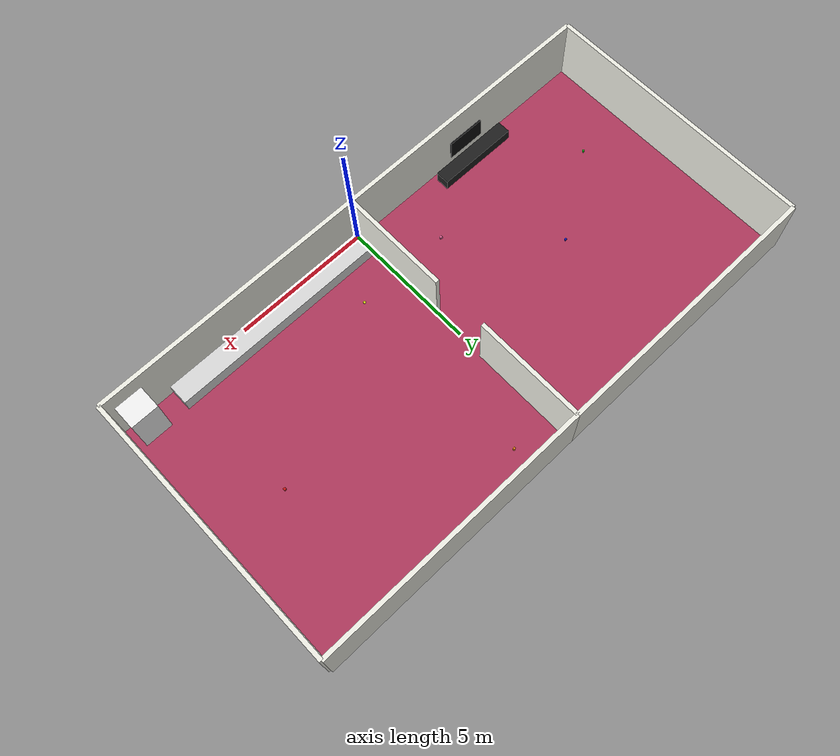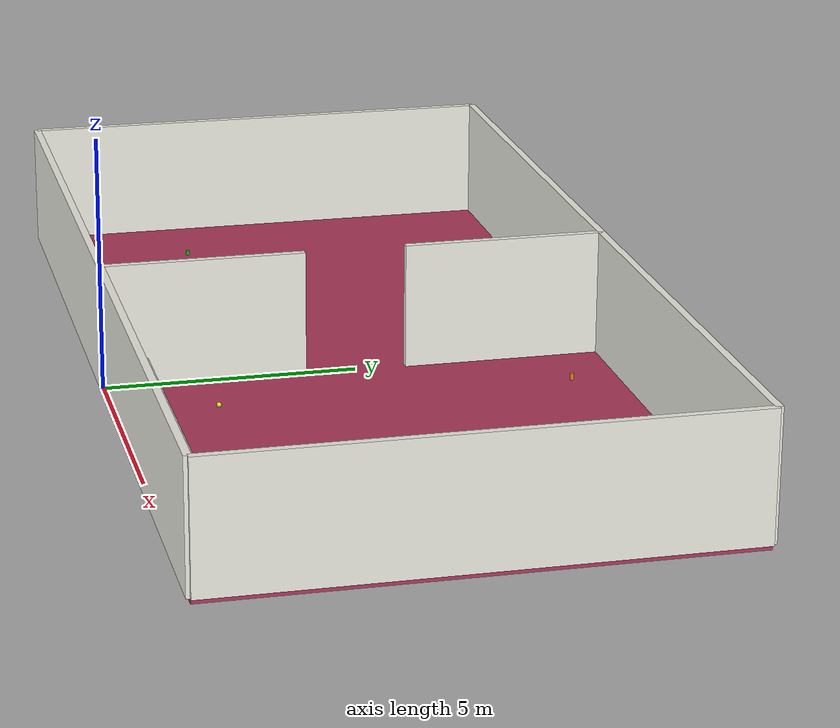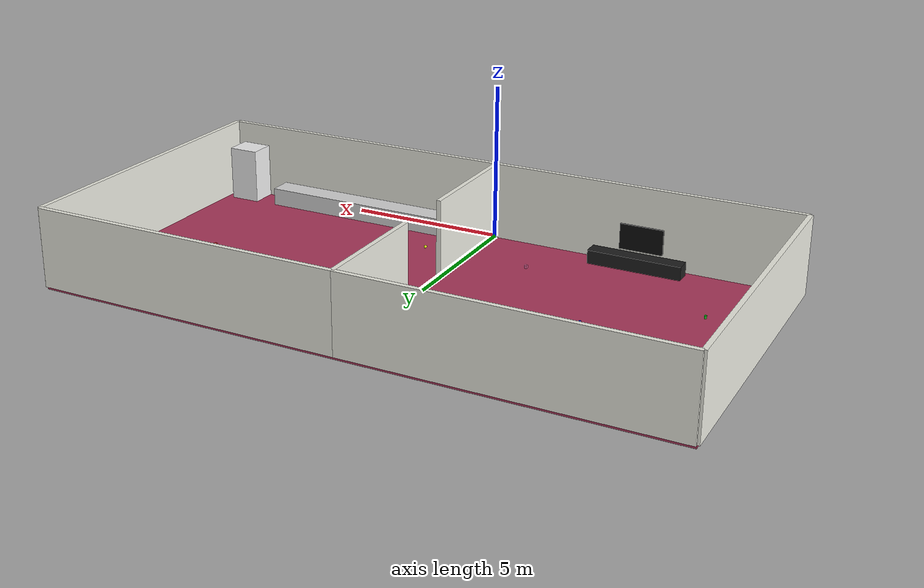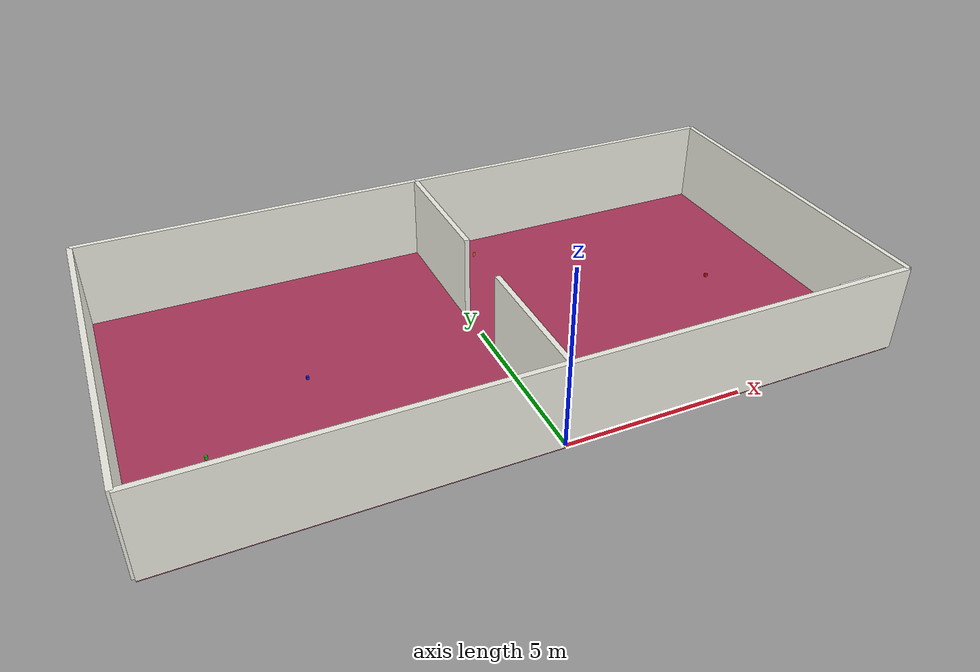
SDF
<sdf version="1.9">
 <world name="driftbot_home">
  <physics name="1ms" type="ignored">
   <max_step_size>0.001</max_step_size>
   <real_time_factor>1.0</real_time_factor>
  </physics>
  <gravity>0 0 -9.81</gravity>
  <scene><ambient>0.4 0.4 0.42</ambient><background>0.82 0.84 0.88</background><grid>false</grid></scene>
  <plugin filename="gz-sim-physics-system" name="gz::sim::systems::Physics"/>
  <plugin filename="gz-sim-sensors-system" name="gz::sim::systems::Sensors">
   <render_engine>ogre2</render_engine>
  </plugin>
  <plugin filename="gz-sim-imu-system" name="gz::sim::systems::Imu"/>
  <plugin filename="gz-sim-user-commands-system" name="gz::sim::systems::UserCommands"/>
  <plugin filename="gz-sim-scene-broadcaster-system" name="gz::sim::systems::SceneBroadcaster"/>
  <light name="sun" type="directional">
   <pose>0 0 10 0 0 0</pose>
   <diffuse>0.85 0.85 0.85 1</diffuse>
   <specular>0.2 0.2 0.2 1</specular>
   <direction>-0.5 0.1 -0.9</direction>
  </light>
  <model name="ground_plane">
   <static>true</static>
   <link name="link">
    <collision name="collision">
     <geometry><plane><normal>0 0 1</normal><size>100 100</size></plane></geometry>
     <surface><friction><ode><mu>0.8</mu><mu2>0.8</mu2></ode></friction></surface>
    </collision>
   </link>
  </model>
  <model name="house_floor">
   <static>true</static>
   <pose>0 5 -0.05 0 0 0</pose>
   <link name="link">
    <collision name="col">
     <geometry><box><size>20.0 10.0 0.1</size></box></geometry>
     <surface><friction><ode><mu>0.8</mu><mu2>0.8</mu2></ode></friction></surface>
    </collision>
    <visual name="vis">
     <geometry><box><size>20.0 10.0 0.1</size></box></geometry>
     <material>
      <ambient>0.55 0.15 0.28 1</ambient>
      <diffuse>0.68 0.22 0.36 1</diffuse>
      <specular>0.12 0.04 0.07 1</specular>
     </material>
    </visual>
   </link>
  </model>
  <model name="room1_north_wall">
   <static>true</static>
   <pose>-5 10 1.25 0 0 0</pose>
   <link name="link">
    <collision name="col"><geometry><box><size>10 0.15 2.5</size></box></geometry></collision>
    <visual name="vis">
     <geometry><box><size>10 0.15 2.5</size></box></geometry>
     <material><ambient>0.94 0.94 0.90 1</ambient><diffuse>0.94 0.94 0.90 1</diffuse></material>
    </visual>
   </link>
  </model>
  <model name="room1_west_wall">
   <static>true</static>
   <pose>-10 5 1.25 0 0 0</pose>
   <link name="link">
    <collision name="col"><geometry><box><size>0.15 10 2.5</size></box></geometry></collision>
    <visual name="vis">
     <geometry><box><size>0.15 10 2.5</size></box></geometry>
     <material><ambient>0.94 0.94 0.90 1</ambient><diffuse>0.94 0.94 0.90 1</diffuse></material>
    </visual>
   </link>
  </model>
  <model name="room1_south_wall">
   <static>true</static>
   <pose>-5 0 1.25 0 0 0</pose>
   <link name="link">
    <collision name="col"><geometry><box><size>10 0.15 2.5</size></box></geometry></collision>
    <visual name="vis">
     <geometry><box><size>10 0.15 2.5</size></box></geometry>
     <material><ambient>0.94 0.94 0.90 1</ambient><diffuse>0.94 0.94 0.90 1</diffuse></material>
    </visual>
   </link>
  </model>
  <model name="room2_north_wall">
   <static>true</static>
   <pose>5 10 1.25 0 0 0</pose>
   <link name="link">
    <collision name="col"><geometry><box><size>10 0.15 2.5</size></box></geometry></collision>
    <visual name="vis">
     <geometry><box><size>10 0.15 2.5</size></box></geometry>
     <material><ambient>0.94 0.94 0.90 1</ambient><diffuse>0.94 0.94 0.90 1</diffuse></material>
    </visual>
   </link>
  </model>
  <model name="room2_east_wall">
   <static>true</static>
   <pose>10 5 1.25 0 0 0</pose>
   <link name="link">
    <collision name="col"><geometry><box><size>0.15 10 2.5</size></box></geometry></collision>
    <visual name="vis">
     <geometry><box><size>0.15 10 2.5</size></box></geometry>
     <material><ambient>0.94 0.94 0.90 1</ambient><diffuse>0.94 0.94 0.90 1</diffuse></material>
    </visual>
   </link>
  </model>
  <model name="room2_south_wall">
   <static>true</static>
   <pose>5 0 1.25 0 0 0</pose>
   <link name="link">
    <collision name="col"><geometry><box><size>10 0.15 2.5</size></box></geometry></collision>
    <visual name="vis">
     <geometry><box><size>10 0.15 2.5</size></box></geometry>
     <material><ambient>0.94 0.94 0.90 1</ambient><diffuse>0.94 0.94 0.90 1</diffuse></material>
    </visual>
   </link>
  </model>
  <model name="shared_wall_bottom">
   <static>true</static>
   <pose>0 2.0 1.25 0 0 0</pose>
   <link name="link">
    <collision name="col"><geometry><box><size>0.15 4.0 2.5</size></box></geometry></collision>
    <visual name="vis">
     <geometry><box><size>0.15 4.0 2.5</size></box></geometry>
     <material><ambient>0.94 0.94 0.90 1</ambient><diffuse>0.94 0.94 0.90 1</diffuse></material>
    </visual>
   </link>
  </model>
  <model name="shared_wall_top">
   <static>true</static>
   <pose>0 8.0 1.25 0 0 0</pose>
   <link name="link">
    <collision name="col"><geometry><box><size>0.15 4.0 2.5</size></box></geometry></collision>
    <visual name="vis">
     <geometry><box><size>0.15 4.0 2.5</size></box></geometry>
     <material><ambient>0.94 0.94 0.90 1</ambient><diffuse>0.94 0.94 0.90 1</diffuse></material>
    </visual>
   </link>
  </model>
  <model name="tv_cabinet_room1">
   <static>true</static>
   <pose>-5.0 0.5 0.22 0 0 0</pose>
   <link name="link">
    <collision name="col"><geometry><box><size>3.0 0.5 0.44</size></box></geometry></collision>
    <visual name="vis">
     <geometry><box><size>3.0 0.5 0.44</size></box></geometry>
     <material><ambient>0.12 0.12 0.12 1</ambient><diffuse>0.12 0.12 0.12 1</diffuse></material>
    </visual>
   </link>
  </model>
  <model name="tv_room1">
   <static>true</static>
   <pose>-5.0 0.105 0.85 0 0 0</pose>
   <link name="link">
    <collision name="col"><geometry><box><size>1.4 0.06 0.82</size></box></geometry></collision>
    <visual name="vis">
     <geometry><box><size>1.4 0.06 0.82</size></box></geometry>
     <material><ambient>0.05 0.05 0.05 1</ambient><diffuse>0.05 0.05 0.05 1</diffuse></material>
    </visual>
   </link>
  </model>
  <model name="fridge_room2">
   <static>true</static>
   <pose>9.2 0.5 0.9 0 0 0</pose>
   <link name="link">
    <collision name="col"><geometry><box><size>1.0 0.85 1.8</size></box></geometry></collision>
    <visual name="vis">
     <geometry><box><size>1.0 0.85 1.8</size></box></geometry>
     <material><ambient>0.95 0.95 0.95 1</ambient><diffuse>0.95 0.95 0.95 1</diffuse></material>
    </visual>
   </link>
  </model>
  <model name="kitchen_slab_room2">
   <static>true</static>
   <pose>4.0 0.5 0.28 0 0 0</pose>
   <link name="link">
    <collision name="col"><geometry><box><size>8.0 0.75 0.6</size></box></geometry></collision>
    <visual name="vis">
     <geometry><box><size>8.0 0.75 0.6</size></box></geometry>
     <material><ambient>0.85 0.85 0.85 1</ambient><diffuse>0.85 0.85 0.85 1</diffuse></material>
    </visual>
   </link>
  </model>
  <model name="toy_block_1">
   <pose>7.5 5.0 0.05 0 0 0</pose>
   <link name="link">
    <collision name="col">
     <geometry><box><size>0.08 0.08 0.10</size></box></geometry>
     <surface><friction><ode><mu>0.6</mu><mu2>0.6</mu2></ode></friction></surface>
    </collision>
    <visual name="vis">
     <geometry><box><size>0.08 0.08 0.10</size></box></geometry>
     <material><ambient>0.8 0.1 0.1 1</ambient><diffuse>0.8 0.1 0.1 1</diffuse></material>
    </visual>
    <inertial>
     <mass>0.1</mass>
     <inertia><ixx>0.0001</ixx><ixy>0</ixy><ixz>0</ixz><iyy>0.0001</iyy><iyz>0</iyz><izz>0.0001</izz></inertia>
    </inertial>
   </link>
  </model>
  <model name="toy_block_2">
   <pose>-5.0 5.0 0.045 0 0 0</pose>
   <link name="link">
    <collision name="col">
     <geometry><box><size>0.07 0.07 0.09</size></box></geometry>
     <surface><friction><ode><mu>0.6</mu><mu2>0.6</mu2></ode></friction></surface>
    </collision>
    <visual name="vis">
     <geometry><box><size>0.07 0.07 0.09</size></box></geometry>
     <material><ambient>0.1 0.1 0.8 1</ambient><diffuse>0.1 0.1 0.8 1</diffuse></material>
    </visual>
    <inertial>
     <mass>0.1</mass>
     <inertia><ixx>0.0001</ixx><ixy>0</ixy><ixz>0</ixz><iyy>0.0001</iyy><iyz>0</iyz><izz>0.0001</izz></inertia>
    </inertial>
   </link>
  </model>
  <model name="toy_block_3">
   <pose>-2.0 2.0 0.05 0 0 0</pose>
   <link name="link">
    <collision name="col">
     <geometry><box><size>0.08 0.08 0.10</size></box></geometry>
     <surface><friction><ode><mu>0.6</mu><mu2>0.6</mu2></ode></friction></surface>
    </collision>
    <visual name="vis">
     <geometry><box><size>0.08 0.08 0.10</size></box></geometry>
     <material><ambient>0.9 0.4 0.6 1</ambient><diffuse>0.9 0.4 0.6 1</diffuse></material>
    </visual>
    <inertial>
     <mass>0.1</mass>
     <inertia><ixx>0.0001</ixx><ixy>0</ixy><ixz>0</ixz><iyy>0.0001</iyy><iyz>0</iyz><izz>0.0001</izz></inertia>
    </inertial>
   </link>
  </model>
  <model name="toy_cylinder_1">
   <pose>-8.0 3.0 0.05 0 0 0</pose>
   <link name="link">
    <collision name="col">
     <geometry><cylinder><radius>0.04</radius><length>0.10</length></cylinder></geometry>
     <surface><friction><ode><mu>0.6</mu><mu2>0.6</mu2></ode></friction></surface>
    </collision>
    <visual name="vis">
     <geometry><cylinder><radius>0.04</radius><length>0.10</length></cylinder></geometry>
     <material><ambient>0.1 0.7 0.1 1</ambient><diffuse>0.1 0.7 0.1 1</diffuse></material>
    </visual>
    <inertial>
     <mass>0.1</mass>
     <inertia><ixx>0.0001</ixx><ixy>0</ixy><ixz>0</ixz><iyy>0.0001</iyy><iyz>0</iyz><izz>0.0001</izz></inertia>
    </inertial>
   </link>
  </model>
  <model name="can">
   <pose>1.5 9.0 0.065 0 0 0</pose>
   <link name="link">
    <collision name="col">
     <geometry><cylinder><radius>0.04</radius><length>0.13</length></cylinder></geometry>
     <surface><friction><ode><mu>0.6</mu><mu2>0.6</mu2></ode></friction></surface>
    </collision>
    <visual name="vis">
     <geometry><cylinder><radius>0.04</radius><length>0.13</length></cylinder></geometry>
     <material><ambient>0.9 0.5 0.1 1</ambient><diffuse>0.9 0.5 0.1 1</diffuse></material>
    </visual>
    <inertial>
     <mass>0.1</mass>
     <inertia><ixx>0.0001</ixx><ixy>0</ixy><ixz>0</ixz><iyy>0.0001</iyy><iyz>0</iyz><izz>0.0001</izz></inertia>
    </inertial>
   </link>
  </model>
  <model name="ball">
   <pose>1.5 2.0 0.05 0 0 0</pose>
   <link name="link">
    <collision name="col">
     <geometry><sphere><radius>0.05</radius></sphere></geometry>
     <surface><friction><ode><mu>0.6</mu><mu2>0.6</mu2></ode></friction></surface>
    </collision>
    <visual name="vis">
     <geometry><sphere><radius>0.05</radius></sphere></geometry>
     <material><ambient>0.9 0.9 0.1 1</ambient><diffuse>0.9 0.9 0.1 1</diffuse></material>
    </visual>
    <inertial>
     <mass>0.1</mass>
     <inertia><ixx>0.0001</ixx><ixy>0</ixy><ixz>0</ixz><iyy>0.0001</iyy><iyz>0</iyz><izz>0.0001</izz></inertia>
    </inertial>
   </link>
  </model>
 </world>
</sdf>
